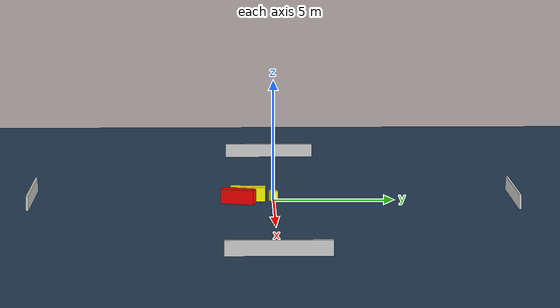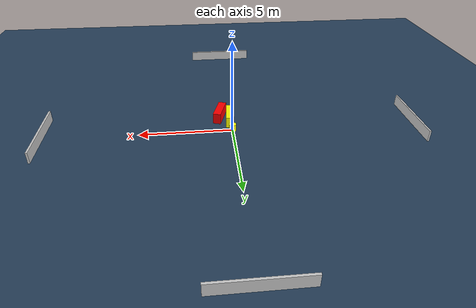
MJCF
<?xml version="1.0" ?>
<mujoco model="generated_environment">
  <option timestep="0.01" integrator="RK4" cone="elliptic"/>
  <default>
    <geom density="1"/>
  </default>
  <asset>
    <texture builtin="gradient" height="3072" name="skybox" rgb1="0.3 0.5 0.7" rgb2="0 0 0" type="skybox" width="512"/>
    <texture builtin="checker" height="300" name="groundplane" rgb1="0.2 0.3 0.4" rgb2="0.1 0.2 0.3" type="2d" width="300"/>
    <material name="groundplane" reflectance="0.2" texrepeat="5 5" texture="groundplane"/>
  </asset>
  <worldbody>
    <light dir="0 0 -1" directional="true" pos="0 0 1.5"/>
    <geom condim="3" friction="0.5 0.005 0.001" material="groundplane" name="floor" pos="0 0 0" size="0 0 0.05" type="plane"/>
    <body name="walls">
      <geom name="wall_1" condim="4" pos="-10.0 0.0 0.3" rgba="0.800000011920929 0.800000011920929 0.800000011920929 1.0" size="0.05 2.0 0.3" type="box"/>
      <geom name="wall_2" condim="4" pos="10.0 0.0 0.3" rgba="0.800000011920929 0.800000011920929 0.800000011920929 1.0" size="0.05 2.0 0.3" type="box"/>
      <geom name="wall_3" condim="4" pos="0.0 -10.0 0.3" rgba="0.800000011920929 0.800000011920929 0.800000011920929 1.0" size="2.0 0.05 0.3" type="box"/>
      <geom name="wall_4" condim="4" pos="0.0 10.0 0.3" rgba="0.800000011920929 0.800000011920929 0.800000011920929 1.0" size="2.0 0.05 0.3" type="box"/>
    </body>
    <body name="robot">
      <joint name="joint_x" type="slide" pos="0 0 0" axis="1 0 0"/>
      <joint name="joint_y" type="slide" pos="0 0 0" axis="0 1 0"/>
      <geom name="robot" type="cylinder" pos="0.0 0.0 0.2" size="0.2 0.2 0.0" mass="5.0" friction="1.0 0.005 0.0001" condim="4" rgba="1.0 1.0 0.0 1.0"/>
    </body>
    <body name="obstacle_1_movable">
      <geom name="obstacle_1_movable" condim="4" pos="0.054576693696087364 -1.045272134214819 0.3" euler="0 0 266.079547883768" friction="0.0 0.005 0.001" rgba="1.0 1.0 0.0 1.0" size="0.7230171591168226 0.20659597838948368 0.3" type="box" mass="0.1"/>
      <joint type="free"/>
    </body>
    <body name="obstacle_2_static">
      <geom name="obstacle_2_static" condim="4" pos="0.5909371553121954 -1.4505229625844722 0.3" euler="0 0 343.02644425737606" friction="0.0 0.005 0.001" rgba="1.0 0.0 0.0 1.0" size="0.2119746249251738 0.6956991663394938 0.3" type="box"/>
    </body>
  </worldbody>
  <actuator>
    <motor name="actuator_x" joint="joint_x" gear="1" ctrlrange="-1 1"/>
    <motor name="actuator_y" joint="joint_y" gear="1" ctrlrange="-1 1"/>
  </actuator>
</mujoco>
